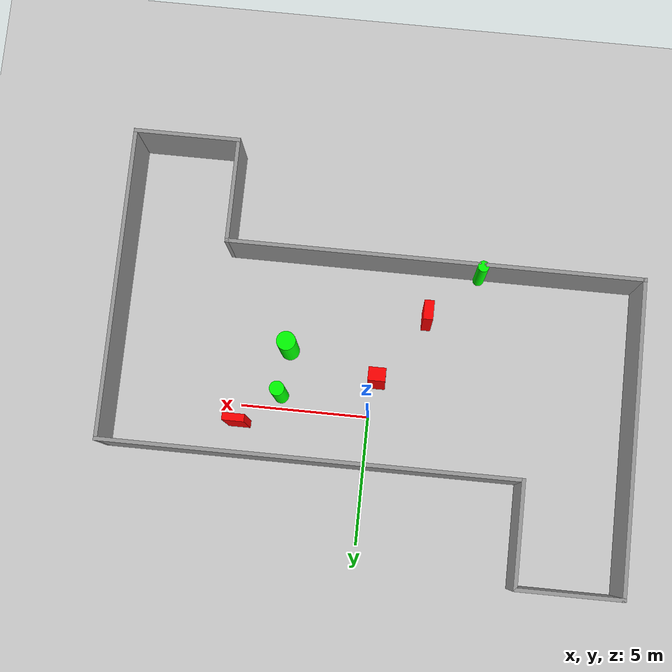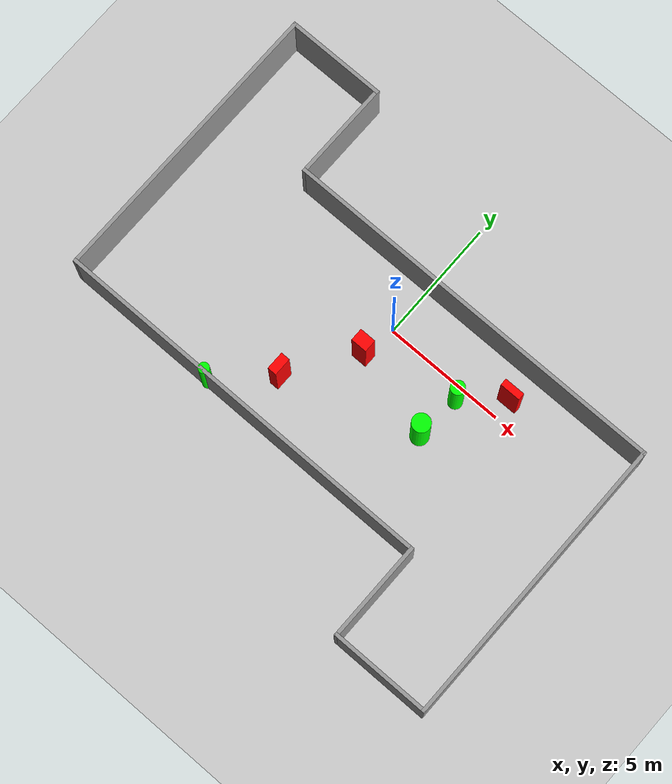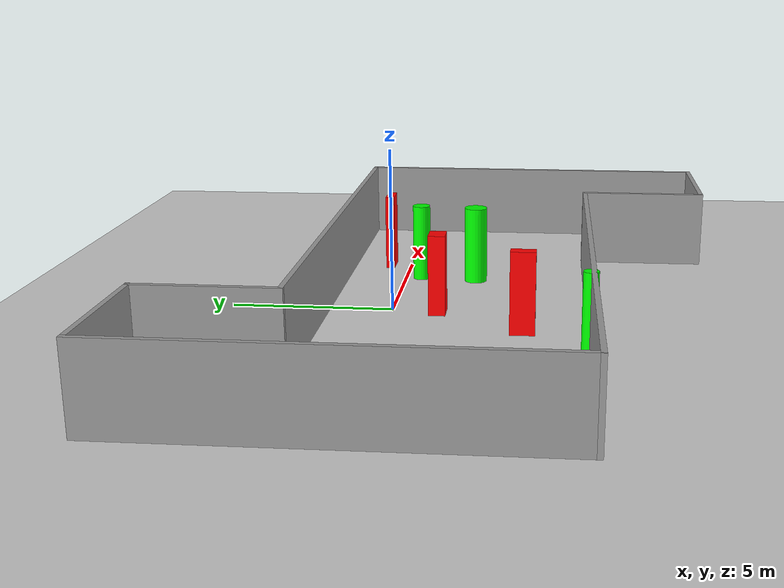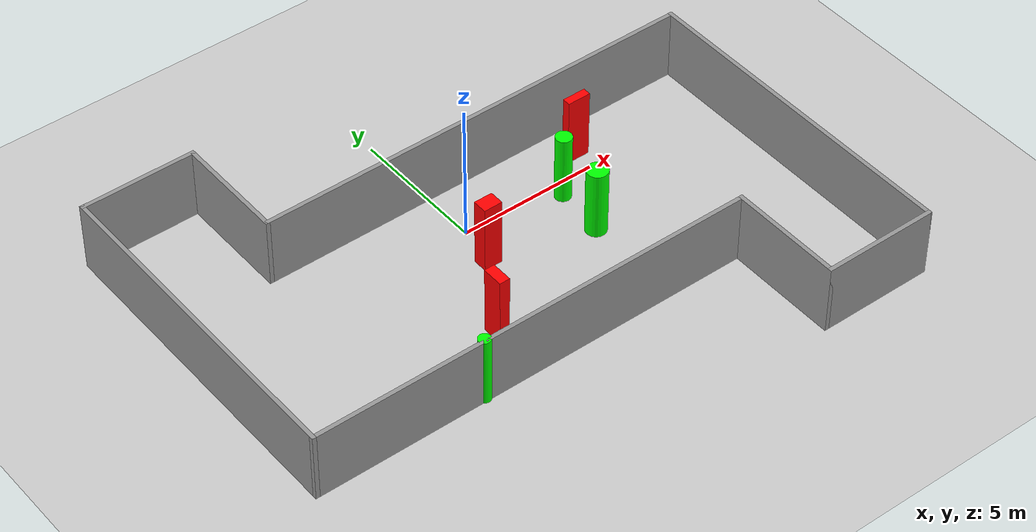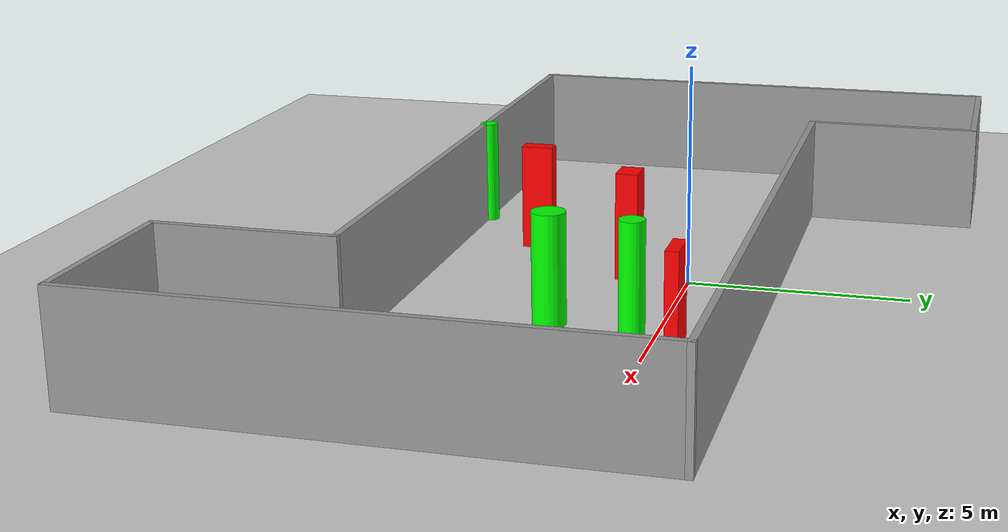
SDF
<sdf version="1.7">
 <world name="default">
  <light name="sun" type="directional">
   <pose>0 0 10 0 -0 0</pose>
   <diffuse>0.8 0.8 0.8 1</diffuse>
   <specular>0.2 0.2 0.2 1</specular>
   <attenuation>
    <range>1000</range>
    <constant>0.9</constant>
    <linear>0.01</linear>
    <quadratic>0.001</quadratic>
   </attenuation>
   <direction>-0.5 0.1 -0.9</direction>
   <spot><inner_angle>0</inner_angle><outer_angle>0</outer_angle><falloff>0</falloff></spot>
  </light>
  <model name="ground_plane">
   <static>1</static>
   <link name="link">
    <collision name="collision">
     <geometry><plane><normal>0 0 1</normal><size>100 100</size></plane></geometry>
     <surface>
      <contact><collide_bitmask>65535</collide_bitmask></contact>
      <friction><ode><mu>100</mu><mu2>50</mu2></ode></friction>
     </surface>
    </collision>
    <visual name="visual">
     <cast_shadows>0</cast_shadows>
     <geometry><plane><normal>0 0 1</normal><size>100 100</size></plane></geometry>
     <material>
      <script><uri>file://media/materials/scripts/gazebo.material</uri><name>Gazebo/Grey</name></script>
     </material>
    </visual>
   </link>
  </model>
  <gravity>0 0 -9.8</gravity>
  <magnetic_field>6e-06 2.3e-05 -4.2e-05</magnetic_field>
  <atmosphere type="adiabatic"/>
  <physics type="ode">
   <max_step_size>0.001</max_step_size>
   <real_time_factor>1</real_time_factor>
   <real_time_update_rate>1000</real_time_update_rate>
  </physics>
  <scene><ambient>0.4 0.4 0.4 1</ambient><background>0.7 0.7 0.7 1</background><shadows>1</shadows></scene>
  <spherical_coordinates>
   <surface_model>EARTH_WGS84</surface_model>
   <latitude_deg>0</latitude_deg>
   <longitude_deg>0</longitude_deg>
   <elevation>0</elevation>
   <heading_deg>0</heading_deg>
  </spherical_coordinates>
  <model name="my_base_walls">
   <link name="Wall_13">
    <collision name="Wall_13_Collision">
     <geometry><box><size>12.15 0.15 2.5</size></box></geometry>
     <pose>0 0 1.25 0 -0 0</pose>
    </collision>
    <visual name="Wall_13_Visual">
     <pose>0 0 1.25 0 -0 0</pose>
     <geometry><box><size>12.15 0.15 2.5</size></box></geometry>
     <material>
      <script><uri>file://media/materials/scripts/gazebo.material</uri><name>Gazebo/Grey</name></script>
      <ambient>1 1 1 1</ambient>
     </material>
     <meta><layer>0</layer></meta>
    </visual>
    <pose>10 -2 0 0 -0 1.5708</pose>
   </link>
   <link name="Wall_15">
    <collision name="Wall_15_Collision">
     <geometry><box><size>16.15 0.15 2.5</size></box></geometry>
     <pose>0 0 1.25 0 -0 0</pose>
    </collision>
    <visual name="Wall_15_Visual">
     <pose>0 0 1.25 0 -0 0</pose>
     <geometry><box><size>16.15 0.15 2.5</size></box></geometry>
     <material>
      <script><uri>file://media/materials/scripts/gazebo.material</uri><name>Gazebo/Grey</name></script>
      <ambient>1 1 1 1</ambient>
     </material>
     <meta><layer>0</layer></meta>
    </visual>
    <pose>2 4 0 0 -0 3.14159</pose>
   </link>
   <link name="Wall_17">
    <collision name="Wall_17_Collision">
     <geometry><box><size>4.15 0.15 2.5</size></box></geometry>
     <pose>0 0 1.25 0 -0 0</pose>
    </collision>
    <visual name="Wall_17_Visual">
     <pose>0 0 1.25 0 -0 0</pose>
     <geometry><box><size>4.15 0.15 2.5</size></box></geometry>
     <material>
      <script><uri>file://media/materials/scripts/gazebo.material</uri><name>Gazebo/Grey</name></script>
      <ambient>1 1 1 1</ambient>
     </material>
     <meta><layer>0</layer></meta>
    </visual>
    <pose>6 -6 0 0 -0 -1.5708</pose>
   </link>
   <link name="Wall_19">
    <collision name="Wall_19_Collision">
     <geometry><box><size>12.15 0.15 2.5</size></box></geometry>
     <pose>0 0 1.25 0 -0 0</pose>
    </collision>
    <visual name="Wall_19_Visual">
     <pose>0 0 1.25 0 -0 0</pose>
     <geometry><box><size>12.15 0.15 2.5</size></box></geometry>
     <material>
      <script><uri>file://media/materials/scripts/gazebo.material</uri><name>Gazebo/Grey</name></script>
      <ambient>1 1 1 1</ambient>
     </material>
     <meta><layer>0</layer></meta>
    </visual>
    <pose>-10 2 0 0 -0 1.5708</pose>
   </link>
   <link name="Wall_21">
    <collision name="Wall_21_Collision">
     <geometry><box><size>4.15 0.15 2.5</size></box></geometry>
     <pose>0 0 1.25 0 -0 0</pose>
    </collision>
    <visual name="Wall_21_Visual">
     <pose>0 0 1.25 0 -0 0</pose>
     <geometry><box><size>4.15 0.15 2.5</size></box></geometry>
     <material>
      <script><uri>file://media/materials/scripts/gazebo.material</uri><name>Gazebo/Grey</name></script>
      <ambient>1 1 1 1</ambient>
     </material>
     <meta><layer>0</layer></meta>
    </visual>
    <pose>-8 8 0 0 -0 0</pose>
   </link>
   <link name="Wall_23">
    <collision name="Wall_23_Collision">
     <geometry><box><size>4.15 0.15 2.5</size></box></geometry>
     <pose>0 0 1.25 0 -0 0</pose>
    </collision>
    <visual name="Wall_23_Visual">
     <pose>0 0 1.25 0 -0 0</pose>
     <geometry><box><size>4.15 0.15 2.5</size></box></geometry>
     <material>
      <script><uri>file://media/materials/scripts/gazebo.material</uri><name>Gazebo/Grey</name></script>
      <ambient>1 1 1 1</ambient>
     </material>
     <meta><layer>0</layer></meta>
    </visual>
    <pose>-6 6 0 0 -0 -1.5708</pose>
   </link>
   <link name="Wall_25">
    <collision name="Wall_25_Collision">
     <geometry><box><size>4.15 0.15 2.5</size></box></geometry>
     <pose>0 0 1.25 0 -0 0</pose>
    </collision>
    <visual name="Wall_25_Visual">
     <pose>0 0 1.25 0 -0 0</pose>
     <geometry><box><size>4.15 0.15 2.5</size></box></geometry>
     <material>
      <script><uri>file://media/materials/scripts/gazebo.material</uri><name>Gazebo/Grey</name></script>
      <ambient>1 1 1 1</ambient>
     </material>
     <meta><layer>0</layer></meta>
    </visual>
    <pose>8 -8 0 0 -0 0</pose>
   </link>
   <link name="Wall_9">
    <collision name="Wall_9_Collision">
     <geometry><box><size>16.15 0.15 2.5</size></box></geometry>
     <pose>0 0 1.25 0 -0 0</pose>
    </collision>
    <visual name="Wall_9_Visual">
     <pose>0 0 1.25 0 -0 0</pose>
     <geometry><box><size>16.15 0.15 2.5</size></box></geometry>
     <material>
      <script><uri>file://media/materials/scripts/gazebo.material</uri><name>Gazebo/Grey</name></script>
      <ambient>1 1 1 1</ambient>
     </material>
     <meta><layer>0</layer></meta>
    </visual>
    <pose>-2 -4 0 0 -0 3.14159</pose>
   </link>
   <static>1</static>
   <pose>-0 -2 0 0 -0 0</pose>
  </model>
  <model name="cylinder1">
   <static>1</static>
   <link name="link">
    <inertial>
     <mass>1</mass>
     <inertia><ixx>0.5</ixx><ixy>0</ixy><ixz>0</ixz><iyy>0.5</iyy><iyz>0</iyz><izz>1</izz></inertia>
    </inertial>
    <collision name="collision">
     <geometry><cylinder><radius>0.28532942084782814</radius><length>2.5</length></cylinder></geometry>
    </collision>
    <visual name="visual">
     <geometry><cylinder><radius>0.28532942084782814</radius><length>2.5</length></cylinder></geometry>
     <material>
      <ambient>0 1 0 1</ambient>
      <diffuse>0 1 0 1</diffuse>
      <specular>0.1 0.1 0.1 1</specular>
      <emissive>0 0 0 0</emissive>
     </material>
    </visual>
   </link>
   <pose>3.476960035703657 -0.5219323909138716 1.25 0 0 0</pose>
  </model>
  <model name="cylinder2">
   <static>1</static>
   <link name="link">
    <inertial>
     <mass>1</mass>
     <inertia><ixx>0.5</ixx><ixy>0</ixy><ixz>0</ixz><iyy>0.5</iyy><iyz>0</iyz><izz>1</izz></inertia>
    </inertial>
    <collision name="collision">
     <geometry><cylinder><radius>0.3693517346831887</radius><length>2.5</length></cylinder></geometry>
    </collision>
    <visual name="visual">
     <geometry><cylinder><radius>0.3693517346831887</radius><length>2.5</length></cylinder></geometry>
     <material>
      <ambient>0 1 0 1</ambient>
      <diffuse>0 1 0 1</diffuse>
      <specular>0.1 0.1 0.1 1</specular>
      <emissive>0 0 0 0</emissive>
     </material>
    </visual>
   </link>
   <pose>3.3268254766337755 -2.351306582280957 1.25 0 0 0</pose>
  </model>
  <model name="cylinder3">
   <static>1</static>
   <link name="link">
    <inertial>
     <mass>1</mass>
     <inertia><ixx>0.5</ixx><ixy>0</ixy><ixz>0</ixz><iyy>0.5</iyy><iyz>0</iyz><izz>1</izz></inertia>
    </inertial>
    <collision name="collision">
     <geometry><cylinder><radius>0.21839045576365082</radius><length>2.5</length></cylinder></geometry>
    </collision>
    <visual name="visual">
     <geometry><cylinder><radius>0.21839045576365082</radius><length>2.5</length></cylinder></geometry>
     <material>
      <ambient>0 1 0 1</ambient>
      <diffuse>0 1 0 1</diffuse>
      <specular>0.1 0.1 0.1 1</specular>
      <emissive>0 0 0 0</emissive>
     </material>
    </visual>
   </link>
   <pose>-3.8509150654206525 -5.926794367027755 1.25 0 0 0</pose>
  </model>
  <model name="box1">
   <static>1</static>
   <link name="link">
    <inertial>
     <mass>1</mass>
     <inertia><ixx>0.083</ixx><ixy>0</ixy><ixz>0</ixz><iyy>0.083</iyy><iyz>0</iyz><izz>0.083</izz></inertia>
    </inertial>
    <collision name="collision">
     <geometry><box><size>0.3744812757476759 0.7451442464576502 2.5</size></box></geometry>
    </collision>
    <visual name="visual">
     <geometry><box><size>0.3744812757476759 0.7451442464576502 2.5</size></box></geometry>
     <material>
      <ambient>1 0 0 1</ambient>
      <diffuse>1 0 0 1</diffuse>
      <specular>0.1 0.1 0.1 1</specular>
      <emissive>0 0 0 0</emissive>
     </material>
    </visual>
    <sensor name="my_contact" type="contact">
     <contact><collision>box_collision</collision><topic>__default_topic__</topic></contact>
    </sensor>
   </link>
   <pose>-1.9286174668184461 -4.059979255139883 1.25 0 0 0</pose>
  </model>
  <model name="box2">
   <static>1</static>
   <link name="link">
    <inertial>
     <mass>1</mass>
     <inertia><ixx>0.083</ixx><ixy>0</ixy><ixz>0</ixz><iyy>0.083</iyy><iyz>0</iyz><izz>0.083</izz></inertia>
    </inertial>
    <collision name="collision">
     <geometry><box><size>0.842799345248473 0.28714894987030637 2.5</size></box></geometry>
    </collision>
    <visual name="visual">
     <geometry><box><size>0.842799345248473 0.28714894987030637 2.5</size></box></geometry>
     <material>
      <ambient>1 0 0 1</ambient>
      <diffuse>1 0 0 1</diffuse>
      <specular>0.1 0.1 0.1 1</specular>
      <emissive>0 0 0 0</emissive>
     </material>
    </visual>
    <sensor name="my_contact" type="contact">
     <contact><collision>box_collision</collision><topic>__default_topic__</topic></contact>
    </sensor>
   </link>
   <pose>4.985239071719349 0.7065313470256482 1.25 0 0 0</pose>
  </model>
  <model name="box3">
   <static>1</static>
   <link name="link">
    <inertial>
     <mass>1</mass>
     <inertia><ixx>0.083</ixx><ixy>0</ixy><ixz>0</ixz><iyy>0.083</iyy><iyz>0</iyz><izz>0.083</izz></inertia>
    </inertial>
    <collision name="collision">
     <geometry><box><size>0.6678245011116857 0.5182862532144996 2.5</size></box></geometry>
    </collision>
    <visual name="visual">
     <geometry><box><size>0.6678245011116857 0.5182862532144996 2.5</size></box></geometry>
     <material>
      <ambient>1 0 0 1</ambient>
      <diffuse>1 0 0 1</diffuse>
      <specular>0.1 0.1 0.1 1</specular>
      <emissive>0 0 0 0</emissive>
     </material>
    </visual>
    <sensor name="my_contact" type="contact">
     <contact><collision>box_collision</collision><topic>__default_topic__</topic></contact>
    </sensor>
   </link>
   <pose>-0.20856666899523013 -1.4227392281041231 1.25 0 0 0</pose>
  </model>
 </world>
</sdf>
